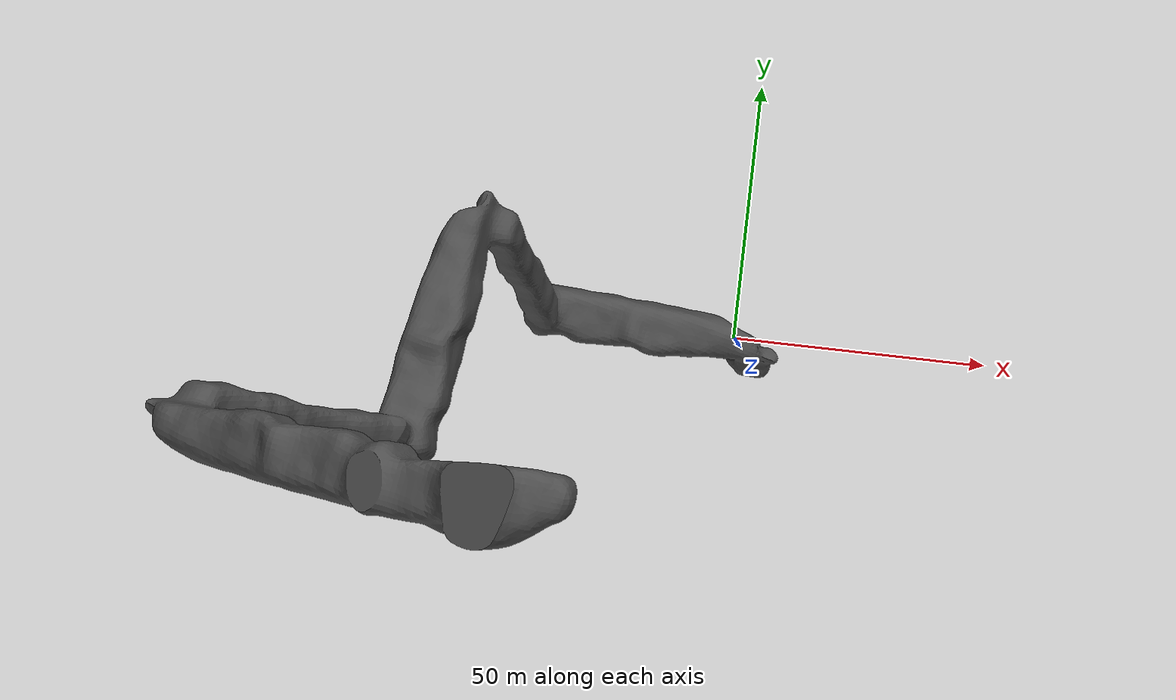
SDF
<sdf version="1.6">
 <world name="default">
  <scene><ambient>0.25 0.25 0.25 1</ambient><background>171 205 239 1</background><shadows>0</shadows></scene>
  <gravity>0 0 -9.81</gravity>
  <light name="sun" type="directional">
   <pose>0 0 10 0 -0 0</pose>
   <diffuse>0.8 0.8 0.8 1</diffuse>
   <specular>0.2 0.2 0.2 1</specular>
   <attenuation>
    <range>1000</range>
    <constant>0.9</constant>
    <linear>0.01</linear>
    <quadratic>0.001</quadratic>
   </attenuation>
   <direction>-0.5 0.1 -0.9</direction>
  </light>
  <model name="mine">
   <pose>6.78044 3.68131 28.5 0 -0.25 -0.1</pose>
   <static>1</static>
   <link name="body">
    <collision name="body_collision">
     <geometry><mesh><uri>model://mine_moes/meshes/mine_moes.dae</uri><scale>1 1 1</scale></mesh></geometry>
    </collision>
    <visual name="body_visual">
     <geometry><mesh><uri>model://mine_moes/meshes/mine_moes.dae</uri><scale>1 1 1</scale></mesh></geometry>
     <material>
      <script><uri>file://media/materials/scripts/gazebo.material</uri><name>Gazebo/Road</name></script>
      <ambient>1 1 1 1</ambient>
     </material>
    </visual>
   </link>
   <static>1</static>
  </model>
  <magnetic_field>6e-06 2.3e-05 -4.2e-05</magnetic_field>
  <atmosphere type="adiabatic"/>
  <physics name="default_physics" default="0" type="ode">
   <max_step_size>0.001</max_step_size>
   <real_time_factor>1</real_time_factor>
   <real_time_update_rate>1000</real_time_update_rate>
  </physics>
  <spherical_coordinates>
   <surface_model>EARTH_WGS84</surface_model>
   <latitude_deg>0</latitude_deg>
   <longitude_deg>0</longitude_deg>
   <elevation>0</elevation>
   <heading_deg>0</heading_deg>
  </spherical_coordinates>
  <light name="sun_clone" type="directional">
   <pose>-21.4152 26.0567 10 0 -0 0</pose>
   <diffuse>0.8 0.8 0.8 1</diffuse>
   <specular>0.2 0.2 0.2 1</specular>
   <direction>-0.483368 0.096674 -0.870063</direction>
   <attenuation>
    <range>1000</range>
    <constant>0.9</constant>
    <linear>0.01</linear>
    <quadratic>0.001</quadratic>
   </attenuation>
  </light>
  <light name="user_point_light_1" type="point">
   <pose>-163.048 -234.432 1 0 -0 0</pose>
   <diffuse>0.5 0.5 0.5 1</diffuse>
   <specular>0.1 0.1 0.1 1</specular>
   <attenuation>
    <range>20</range>
    <constant>0.5</constant>
    <linear>0.01</linear>
    <quadratic>0.001</quadratic>
   </attenuation>
   <cast_shadows>0</cast_shadows>
   <direction>0 0 -1</direction>
  </light>
  <light name="user_point_light_2" type="point">
   <pose>-252.927 -389.351 1 0 -0 0</pose>
   <diffuse>0.5 0.5 0.5 1</diffuse>
   <specular>0.1 0.1 0.1 1</specular>
   <attenuation>
    <range>20</range>
    <constant>0.5</constant>
    <linear>0.01</linear>
    <quadratic>0.001</quadratic>
   </attenuation>
   <cast_shadows>0</cast_shadows>
   <direction>0 0 -1</direction>
  </light>
  <light name="user_point_light_3" type="point">
   <pose>-195.431 -302.817 1 0 -0 0</pose>
   <diffuse>0.5 0.5 0.5 1</diffuse>
   <specular>0.1 0.1 0.1 1</specular>
   <attenuation>
    <range>20</range>
    <constant>0.5</constant>
    <linear>0.01</linear>
    <quadratic>0.001</quadratic>
   </attenuation>
   <cast_shadows>0</cast_shadows>
   <direction>0 0 -1</direction>
  </light>
  <light name="user_point_light_4" type="point">
   <pose>-209.415 -361.59 1 0 -0 0</pose>
   <diffuse>0.5 0.5 0.5 1</diffuse>
   <specular>0.1 0.1 0.1 1</specular>
   <attenuation>
    <range>20</range>
    <constant>0.5</constant>
    <linear>0.01</linear>
    <quadratic>0.001</quadratic>
   </attenuation>
   <cast_shadows>0</cast_shadows>
   <direction>0 0 -1</direction>
  </light>
  <light name="user_point_light_0" type="point">
   <pose>-32.7038 -225.089 1 0 -0 0</pose>
   <diffuse>0.5 0.5 0.5 1</diffuse>
   <specular>0.1 0.1 0.1 1</specular>
   <attenuation>
    <range>20</range>
    <constant>0.5</constant>
    <linear>0.01</linear>
    <quadratic>0.001</quadratic>
   </attenuation>
   <cast_shadows>0</cast_shadows>
   <direction>0 0 -1</direction>
  </light>
  <light name="user_point_light_5" type="point">
   <pose>-37.181 -316.1 1 0 -0 0</pose>
   <diffuse>0.5 0.5 0.5 1</diffuse>
   <specular>0.1 0.1 0.1 1</specular>
   <attenuation>
    <range>20</range>
    <constant>0.5</constant>
    <linear>0.01</linear>
    <quadratic>0.001</quadratic>
   </attenuation>
   <cast_shadows>0</cast_shadows>
   <direction>0 0 -1</direction>
  </light>
 </world>
</sdf>
